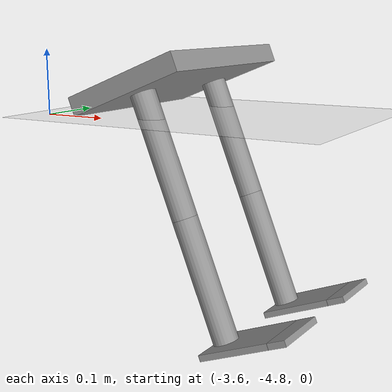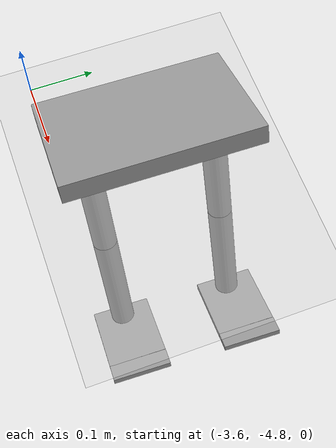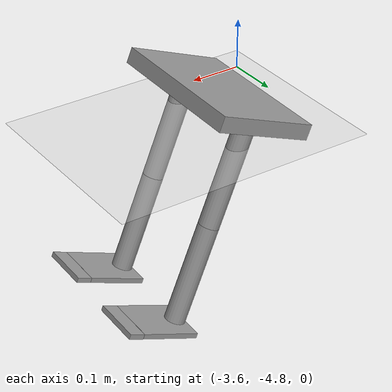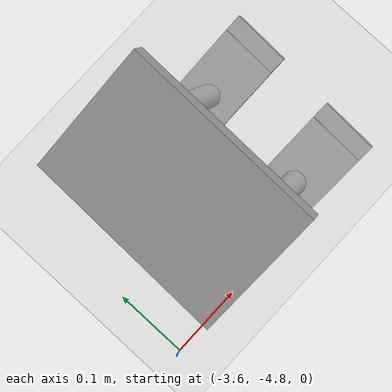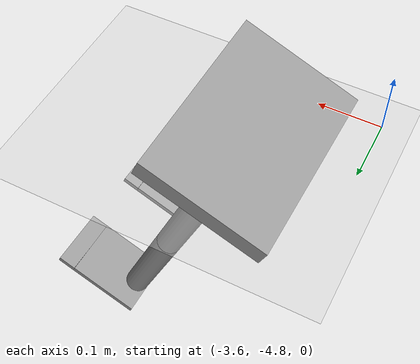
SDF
<sdf version="1.6">
 <world name="default">
  <model name="ground_plane">
   <static>1</static>
   <link name="link">
    <collision name="collision">
     <geometry><plane><normal>0 0 1</normal><size>100 100</size></plane></geometry>
     <surface><friction><ode><mu>100</mu><mu2>50</mu2></ode></friction></surface>
    </collision>
    <visual name="visual">
     <cast_shadows>0</cast_shadows>
     <geometry><plane><normal>0 0 1</normal><size>100 100</size></plane></geometry>
     <material>
      <script><uri>file://media/materials/scripts/gazebo.material</uri><name>Gazebo/Grey</name></script>
     </material>
    </visual>
   </link>
  </model>
  <model name="humanoid_0">
   <link name="link_0">
    <inertial>
     <mass>1</mass>
     <inertia>
      <ixx>0.166667</ixx>
      <ixy>0</ixy>
      <ixz>0</ixz>
      <iyy>0.166667</iyy>
      <iyz>0</iyz>
      <izz>0.166667</izz>
     </inertia>
    </inertial>
    <pose>0.02879 -0.034222 0.3501 0 -0 0</pose>
    <visual name="visual">
     <geometry><box><size>0.2 0.3 0.03</size></box></geometry>
     <material>
      <lighting>1</lighting>
      <script><uri>file://media/materials/scripts/gazebo.material</uri><name>Gazebo/Grey</name></script>
      <shader type="pixel"><normal_map>__default__</normal_map></shader>
      <ambient>0.3 0.3 0.3 1</ambient>
      <diffuse>0.7 0.7 0.7 1</diffuse>
      <specular>0.01 0.01 0.01 1</specular>
      <emissive>0 0 0 1</emissive>
     </material>
    </visual>
    <collision name="collision">
     <geometry><box><size>0.2 0.3 0.03</size></box></geometry>
     <surface>
      <friction>
       <ode><mu>1</mu><mu2>1</mu2><fdir1>0 0 0</fdir1><slip1>0</slip1><slip2>0</slip2></ode>
       <torsional>
        <coefficient>1</coefficient>
        <patch_radius>0</patch_radius>
        <surface_radius>0</surface_radius>
        <use_patch_radius>1</use_patch_radius>
        <ode><slip>0</slip></ode>
       </torsional>
      </friction>
      <bounce><restitution_coefficient>0</restitution_coefficient><threshold>1e+06</threshold></bounce>
      <contact>
       <collide_without_contact>0</collide_without_contact>
       <collide_without_contact_bitmask>1</collide_without_contact_bitmask>
       <collide_bitmask>1</collide_bitmask>
       <ode>
        <soft_cfm>0</soft_cfm>
        <soft_erp>0.2</soft_erp>
        <kp>1e+13</kp>
        <kd>1</kd>
        <max_vel>0.01</max_vel>
        <min_depth>0</min_depth>
       </ode>
       <bullet>
        <split_impulse>1</split_impulse>
        <split_impulse_penetration_threshold>-0.01</split_impulse_penetration_threshold>
        <soft_cfm>0</soft_cfm>
        <soft_erp>0.2</soft_erp>
        <kp>1e+13</kp>
        <kd>1</kd>
       </bullet>
      </contact>
     </surface>
    </collision>
   </link>
   <model name="full-leg">
    <link name="link_0">
     <inertial>
      <mass>0.0847963</mass>
      <inertia>
       <ixx>0.00010908</ixx>
       <ixy>0</ixy>
       <ixz>0</ixz>
       <iyy>7.137e-05</iyy>
       <iyz>0</iyz>
       <izz>0.00017903</izz>
      </inertia>
     </inertial>
     <pose>0.065943 0.108898 0.091666 0 -0 0</pose>
     <visual name="visual">
      <geometry><box><size>0.1 0.12 0.01</size></box></geometry>
      <material>
       <lighting>1</lighting>
       <script><uri>file://media/materials/scripts/gazebo.material</uri><name>Gazebo/Grey</name></script>
       <shader type="pixel"><normal_map>__default__</normal_map></shader>
       <ambient>0.3 0.3 0.3 1</ambient>
       <diffuse>0.7 0.7 0.7 1</diffuse>
       <specular>0.01 0.01 0.01 1</specular>
       <emissive>0 0 0 1</emissive>
      </material>
     </visual>
     <collision name="collision">
      <geometry><box><size>0.1 0.12 0.01</size></box></geometry>
      <surface>
       <friction>
        <ode><mu>1</mu><mu2>1</mu2><fdir1>0 0 0</fdir1><slip1>0</slip1><slip2>0</slip2></ode>
        <torsional>
         <coefficient>1</coefficient>
         <patch_radius>0</patch_radius>
         <surface_radius>0</surface_radius>
         <use_patch_radius>1</use_patch_radius>
         <ode><slip>0</slip></ode>
        </torsional>
       </friction>
       <bounce><restitution_coefficient>0</restitution_coefficient><threshold>1e+06</threshold></bounce>
       <contact>
        <collide_without_contact>0</collide_without_contact>
        <collide_without_contact_bitmask>1</collide_without_contact_bitmask>
        <collide_bitmask>1</collide_bitmask>
        <ode>
         <soft_cfm>0</soft_cfm>
         <soft_erp>0.2</soft_erp>
         <kp>1e+13</kp>
         <kd>1</kd>
         <max_vel>0.01</max_vel>
         <min_depth>0</min_depth>
        </ode>
        <bullet>
         <split_impulse>1</split_impulse>
         <split_impulse_penetration_threshold>-0.01</split_impulse_penetration_threshold>
         <soft_cfm>0</soft_cfm>
         <soft_erp>0.2</soft_erp>
         <kp>1e+13</kp>
         <kd>1</kd>
        </bullet>
       </contact>
      </surface>
     </collision>
    </link>
    <link name="link_0_clone">
     <inertial>
      <mass>0.0847963</mass>
      <inertia>
       <ixx>0.00010908</ixx>
       <ixy>0</ixy>
       <ixz>0</ixz>
       <iyy>7.137e-05</iyy>
       <iyz>0</iyz>
       <izz>0.00017903</izz>
      </inertia>
     </inertial>
     <pose>0.065943 0.183898 0.091666 0 0 -0.01</pose>
     <visual name="visual">
      <geometry><box><size>0.1 0.03 0.01</size></box></geometry>
      <material>
       <lighting>1</lighting>
       <script><uri>file://media/materials/scripts/gazebo.material</uri><name>Gazebo/Grey</name></script>
       <shader type="pixel"><normal_map>__default__</normal_map></shader>
       <ambient>0.3 0.3 0.3 1</ambient>
       <diffuse>0.7 0.7 0.7 1</diffuse>
       <specular>0.01 0.01 0.01 1</specular>
       <emissive>0 0 0 1</emissive>
      </material>
     </visual>
     <collision name="collision">
      <geometry><box><size>0.1 0.03 0.01</size></box></geometry>
      <surface>
       <friction>
        <ode><mu>1</mu><mu2>1</mu2><fdir1>0 0 0</fdir1><slip1>0</slip1><slip2>0</slip2></ode>
        <torsional>
         <coefficient>1</coefficient>
         <patch_radius>0</patch_radius>
         <surface_radius>0</surface_radius>
         <use_patch_radius>1</use_patch_radius>
         <ode><slip>0</slip></ode>
        </torsional>
       </friction>
       <bounce><restitution_coefficient>0</restitution_coefficient><threshold>1e+06</threshold></bounce>
       <contact>
        <collide_without_contact>0</collide_without_contact>
        <collide_without_contact_bitmask>1</collide_without_contact_bitmask>
        <collide_bitmask>1</collide_bitmask>
        <ode>
         <soft_cfm>0</soft_cfm>
         <soft_erp>0.2</soft_erp>
         <kp>1e+13</kp>
         <kd>1</kd>
         <max_vel>0.01</max_vel>
         <min_depth>0</min_depth>
        </ode>
        <bullet>
         <split_impulse>1</split_impulse>
         <split_impulse_penetration_threshold>-0.01</split_impulse_penetration_threshold>
         <soft_cfm>0</soft_cfm>
         <soft_erp>0.2</soft_erp>
         <kp>1e+13</kp>
         <kd>1</kd>
        </bullet>
       </contact>
      </surface>
     </collision>
    </link>
    <link name="link_1">
     <inertial>
      <mass>1</mass>
      <inertia><ixx>0.145833</ixx><ixy>0</ixy><ixz>0</ixz><iyy>0.145833</iyy><iyz>0</iyz><izz>0.125</izz></inertia>
     </inertial>
     <pose>0.065943 0.068898 0.191666 0 -0 0</pose>
     <visual name="visual">
      <geometry><cylinder><radius>0.02</radius><length>0.2</length></cylinder></geometry>
      <material>
       <lighting>1</lighting>
       <script><uri>file://media/materials/scripts/gazebo.material</uri><name>Gazebo/Grey</name></script>
       <shader type="pixel"><normal_map>__default__</normal_map></shader>
       <ambient>0.3 0.3 0.3 1</ambient>
       <diffuse>0.7 0.7 0.7 1</diffuse>
       <specular>0.01 0.01 0.01 1</specular>
       <emissive>0 0 0 1</emissive>
      </material>
     </visual>
     <collision name="collision">
      <geometry><cylinder><radius>0.02</radius><length>0.2</length></cylinder></geometry>
      <surface>
       <friction>
        <ode><mu>1</mu><mu2>1</mu2><fdir1>0 0 0</fdir1><slip1>0</slip1><slip2>0</slip2></ode>
        <torsional>
         <coefficient>1</coefficient>
         <patch_radius>0</patch_radius>
         <surface_radius>0</surface_radius>
         <use_patch_radius>1</use_patch_radius>
         <ode><slip>0</slip></ode>
        </torsional>
       </friction>
       <bounce><restitution_coefficient>0</restitution_coefficient><threshold>1e+06</threshold></bounce>
       <contact>
        <collide_without_contact>0</collide_without_contact>
        <collide_without_contact_bitmask>1</collide_without_contact_bitmask>
        <collide_bitmask>1</collide_bitmask>
        <ode>
         <soft_cfm>0</soft_cfm>
         <soft_erp>0.2</soft_erp>
         <kp>1e+13</kp>
         <kd>1</kd>
         <max_vel>0.01</max_vel>
         <min_depth>0</min_depth>
        </ode>
        <bullet>
         <split_impulse>1</split_impulse>
         <split_impulse_penetration_threshold>-0.01</split_impulse_penetration_threshold>
         <soft_cfm>0</soft_cfm>
         <soft_erp>0.2</soft_erp>
         <kp>1e+13</kp>
         <kd>1</kd>
        </bullet>
       </contact>
      </surface>
     </collision>
    </link>
    <link name="link_1_clone">
     <inertial>
      <mass>1</mass>
      <inertia><ixx>0.145833</ixx><ixy>0</ixy><ixz>0</ixz><iyy>0.145833</iyy><iyz>0</iyz><izz>0.125</izz></inertia>
     </inertial>
     <pose>0.065943 0.068898 0.391666 0 -0 0</pose>
     <visual name="visual">
      <geometry><cylinder><radius>0.02</radius><length>0.2</length></cylinder></geometry>
      <material>
       <lighting>1</lighting>
       <script><uri>file://media/materials/scripts/gazebo.material</uri><name>Gazebo/Grey</name></script>
       <shader type="pixel"><normal_map>__default__</normal_map></shader>
       <ambient>0.3 0.3 0.3 1</ambient>
       <diffuse>0.7 0.7 0.7 1</diffuse>
       <specular>0.01 0.01 0.01 1</specular>
       <emissive>0 0 0 1</emissive>
      </material>
     </visual>
     <collision name="collision">
      <geometry><cylinder><radius>0.02</radius><length>0.2</length></cylinder></geometry>
      <surface>
       <friction>
        <ode><mu>1</mu><mu2>1</mu2><fdir1>0 0 0</fdir1><slip1>0</slip1><slip2>0</slip2></ode>
        <torsional>
         <coefficient>1</coefficient>
         <patch_radius>0</patch_radius>
         <surface_radius>0</surface_radius>
         <use_patch_radius>1</use_patch_radius>
         <ode><slip>0</slip></ode>
        </torsional>
       </friction>
       <bounce><restitution_coefficient>0</restitution_coefficient><threshold>1e+06</threshold></bounce>
       <contact>
        <collide_without_contact>0</collide_without_contact>
        <collide_without_contact_bitmask>1</collide_without_contact_bitmask>
        <collide_bitmask>1</collide_bitmask>
        <ode>
         <soft_cfm>0</soft_cfm>
         <soft_erp>0.2</soft_erp>
         <kp>1e+13</kp>
         <kd>1</kd>
         <max_vel>0.01</max_vel>
         <min_depth>0</min_depth>
        </ode>
        <bullet>
         <split_impulse>1</split_impulse>
         <split_impulse_penetration_threshold>-0.01</split_impulse_penetration_threshold>
         <soft_cfm>0</soft_cfm>
         <soft_erp>0.2</soft_erp>
         <kp>1e+13</kp>
         <kd>1</kd>
        </bullet>
       </contact>
      </surface>
     </collision>
    </link>
    <joint name="link_0_JOINT_0" type="revolute">
     <parent>link_0</parent>
     <child>link_0_clone</child>
     <pose>0 -0.015 0 0 -0 0</pose>
     <axis>
      <xyz>1 0 0</xyz>
      <limit>
       <lower>-1.79769e+308</lower>
       <upper>1.79769e+308</upper>
       <effort>-1</effort>
       <velocity>-1</velocity>
      </limit>
      <dynamics>
       <spring_reference>0</spring_reference>
       <spring_stiffness>0</spring_stiffness>
       <damping>0</damping>
      </dynamics>
      <use_parent_model_frame>0</use_parent_model_frame>
     </axis>
     <physics>
      <ode><limit><cfm>0</cfm><erp>0.2</erp></limit><suspension><cfm>0</cfm><erp>0.2</erp></suspension></ode>
     </physics>
    </joint>
    <joint name="link_0_JOINT_2" type="revolute">
     <parent>link_0</parent>
     <child>link_1</child>
     <pose>0 0 -0.1 0 -0 0</pose>
     <axis>
      <xyz>1 0 0</xyz>
      <limit>
       <lower>-1.79769e+308</lower>
       <upper>1.79769e+308</upper>
       <effort>-1</effort>
       <velocity>-1</velocity>
      </limit>
      <dynamics>
       <spring_reference>0</spring_reference>
       <spring_stiffness>0</spring_stiffness>
       <damping>0</damping>
      </dynamics>
      <use_parent_model_frame>0</use_parent_model_frame>
     </axis>
     <physics>
      <ode><limit><cfm>0</cfm><erp>0.2</erp></limit><suspension><cfm>0</cfm><erp>0.2</erp></suspension></ode>
     </physics>
    </joint>
    <joint name="link_1_JOINT_3" type="revolute">
     <parent>link_1</parent>
     <child>link_1_clone</child>
     <pose>0 0 -0.1 0 -0 0</pose>
     <axis>
      <xyz>1 0 0</xyz>
      <limit>
       <lower>-1.79769e+308</lower>
       <upper>1.79769e+308</upper>
       <effort>-1</effort>
       <velocity>-1</velocity>
      </limit>
      <dynamics>
       <spring_reference>0</spring_reference>
       <spring_stiffness>0</spring_stiffness>
       <damping>0</damping>
      </dynamics>
      <use_parent_model_frame>0</use_parent_model_frame>
     </axis>
     <physics>
      <ode><limit><cfm>0</cfm><erp>0.2</erp></limit><suspension><cfm>0</cfm><erp>0.2</erp></suspension></ode>
     </physics>
    </joint>
    <static>0</static>
    <pose>-0.042531 -0.066167 -0.154901 0 0 -1.57989</pose>
   </model>
   <model name="full-leg_clone">
    <link name="link_0">
     <inertial>
      <mass>0.0847963</mass>
      <inertia>
       <ixx>0.00010908</ixx>
       <ixy>0</ixy>
       <ixz>0</ixz>
       <iyy>7.137e-05</iyy>
       <iyz>0</iyz>
       <izz>0.00017903</izz>
      </inertia>
     </inertial>
     <pose>0.065943 0.108898 0.091666 0 -0 0</pose>
     <visual name="visual">
      <geometry><box><size>0.1 0.12 0.01</size></box></geometry>
      <material>
       <lighting>1</lighting>
       <script><uri>file://media/materials/scripts/gazebo.material</uri><name>Gazebo/Grey</name></script>
       <shader type="pixel"><normal_map>__default__</normal_map></shader>
       <ambient>0.3 0.3 0.3 1</ambient>
       <diffuse>0.7 0.7 0.7 1</diffuse>
       <specular>0.01 0.01 0.01 1</specular>
       <emissive>0 0 0 1</emissive>
      </material>
     </visual>
     <collision name="collision">
      <geometry><box><size>0.1 0.12 0.01</size></box></geometry>
      <surface>
       <friction>
        <ode><mu>1</mu><mu2>1</mu2><fdir1>0 0 0</fdir1><slip1>0</slip1><slip2>0</slip2></ode>
        <torsional>
         <coefficient>1</coefficient>
         <patch_radius>0</patch_radius>
         <surface_radius>0</surface_radius>
         <use_patch_radius>1</use_patch_radius>
         <ode><slip>0</slip></ode>
        </torsional>
       </friction>
       <bounce><restitution_coefficient>0</restitution_coefficient><threshold>1e+06</threshold></bounce>
       <contact>
        <collide_without_contact>0</collide_without_contact>
        <collide_without_contact_bitmask>1</collide_without_contact_bitmask>
        <collide_bitmask>1</collide_bitmask>
        <ode>
         <soft_cfm>0</soft_cfm>
         <soft_erp>0.2</soft_erp>
         <kp>1e+13</kp>
         <kd>1</kd>
         <max_vel>0.01</max_vel>
         <min_depth>0</min_depth>
        </ode>
        <bullet>
         <split_impulse>1</split_impulse>
         <split_impulse_penetration_threshold>-0.01</split_impulse_penetration_threshold>
         <soft_cfm>0</soft_cfm>
         <soft_erp>0.2</soft_erp>
         <kp>1e+13</kp>
         <kd>1</kd>
        </bullet>
       </contact>
      </surface>
     </collision>
    </link>
    <link name="link_0_clone">
     <inertial>
      <mass>0.0847963</mass>
      <inertia>
       <ixx>0.00010908</ixx>
       <ixy>0</ixy>
       <ixz>0</ixz>
       <iyy>7.137e-05</iyy>
       <iyz>0</iyz>
       <izz>0.00017903</izz>
      </inertia>
     </inertial>
     <pose>0.065943 0.183898 0.091666 0 0 -0.01</pose>
     <visual name="visual">
      <geometry><box><size>0.1 0.03 0.01</size></box></geometry>
      <material>
       <lighting>1</lighting>
       <script><uri>file://media/materials/scripts/gazebo.material</uri><name>Gazebo/Grey</name></script>
       <shader type="pixel"><normal_map>__default__</normal_map></shader>
       <ambient>0.3 0.3 0.3 1</ambient>
       <diffuse>0.7 0.7 0.7 1</diffuse>
       <specular>0.01 0.01 0.01 1</specular>
       <emissive>0 0 0 1</emissive>
      </material>
     </visual>
     <collision name="collision">
      <geometry><box><size>0.1 0.03 0.01</size></box></geometry>
      <surface>
       <friction>
        <ode><mu>1</mu><mu2>1</mu2><fdir1>0 0 0</fdir1><slip1>0</slip1><slip2>0</slip2></ode>
        <torsional>
         <coefficient>1</coefficient>
         <patch_radius>0</patch_radius>
         <surface_radius>0</surface_radius>
         <use_patch_radius>1</use_patch_radius>
         <ode><slip>0</slip></ode>
        </torsional>
       </friction>
       <bounce><restitution_coefficient>0</restitution_coefficient><threshold>1e+06</threshold></bounce>
       <contact>
        <collide_without_contact>0</collide_without_contact>
        <collide_without_contact_bitmask>1</collide_without_contact_bitmask>
        <collide_bitmask>1</collide_bitmask>
        <ode>
         <soft_cfm>0</soft_cfm>
         <soft_erp>0.2</soft_erp>
         <kp>1e+13</kp>
         <kd>1</kd>
         <max_vel>0.01</max_vel>
         <min_depth>0</min_depth>
        </ode>
        <bullet>
         <split_impulse>1</split_impulse>
         <split_impulse_penetration_threshold>-0.01</split_impulse_penetration_threshold>
         <soft_cfm>0</soft_cfm>
         <soft_erp>0.2</soft_erp>
         <kp>1e+13</kp>
         <kd>1</kd>
        </bullet>
       </contact>
      </surface>
     </collision>
    </link>
    <link name="link_1">
     <inertial>
      <mass>1</mass>
      <inertia><ixx>0.145833</ixx><ixy>0</ixy><ixz>0</ixz><iyy>0.145833</iyy><iyz>0</iyz><izz>0.125</izz></inertia>
     </inertial>
     <pose>0.065943 0.068898 0.191666 0 -0 0</pose>
     <visual name="visual">
      <geometry><cylinder><radius>0.02</radius><length>0.2</length></cylinder></geometry>
      <material>
       <lighting>1</lighting>
       <script><uri>file://media/materials/scripts/gazebo.material</uri><name>Gazebo/Grey</name></script>
       <shader type="pixel"><normal_map>__default__</normal_map></shader>
       <ambient>0.3 0.3 0.3 1</ambient>
       <diffuse>0.7 0.7 0.7 1</diffuse>
       <specular>0.01 0.01 0.01 1</specular>
       <emissive>0 0 0 1</emissive>
      </material>
     </visual>
     <collision name="collision">
      <geometry><cylinder><radius>0.02</radius><length>0.2</length></cylinder></geometry>
      <surface>
       <friction>
        <ode><mu>1</mu><mu2>1</mu2><fdir1>0 0 0</fdir1><slip1>0</slip1><slip2>0</slip2></ode>
        <torsional>
         <coefficient>1</coefficient>
         <patch_radius>0</patch_radius>
         <surface_radius>0</surface_radius>
         <use_patch_radius>1</use_patch_radius>
         <ode><slip>0</slip></ode>
        </torsional>
       </friction>
       <bounce><restitution_coefficient>0</restitution_coefficient><threshold>1e+06</threshold></bounce>
       <contact>
        <collide_without_contact>0</collide_without_contact>
        <collide_without_contact_bitmask>1</collide_without_contact_bitmask>
        <collide_bitmask>1</collide_bitmask>
        <ode>
         <soft_cfm>0</soft_cfm>
         <soft_erp>0.2</soft_erp>
         <kp>1e+13</kp>
         <kd>1</kd>
         <max_vel>0.01</max_vel>
         <min_depth>0</min_depth>
        </ode>
        <bullet>
         <split_impulse>1</split_impulse>
         <split_impulse_penetration_threshold>-0.01</split_impulse_penetration_threshold>
         <soft_cfm>0</soft_cfm>
         <soft_erp>0.2</soft_erp>
         <kp>1e+13</kp>
         <kd>1</kd>
        </bullet>
       </contact>
      </surface>
     </collision>
    </link>
    <link name="link_1_clone">
     <inertial>
      <mass>1</mass>
      <inertia><ixx>0.145833</ixx><ixy>0</ixy><ixz>0</ixz><iyy>0.145833</iyy><iyz>0</iyz><izz>0.125</izz></inertia>
     </inertial>
     <pose>0.065943 0.068898 0.391666 0 -0 0</pose>
     <visual name="visual">
      <geometry><cylinder><radius>0.02</radius><length>0.2</length></cylinder></geometry>
      <material>
       <lighting>1</lighting>
       <script><uri>file://media/materials/scripts/gazebo.material</uri><name>Gazebo/Grey</name></script>
       <shader type="pixel"><normal_map>__default__</normal_map></shader>
       <ambient>0.3 0.3 0.3 1</ambient>
       <diffuse>0.7 0.7 0.7 1</diffuse>
       <specular>0.01 0.01 0.01 1</specular>
       <emissive>0 0 0 1</emissive>
      </material>
     </visual>
     <collision name="collision">
      <geometry><cylinder><radius>0.02</radius><length>0.2</length></cylinder></geometry>
      <surface>
       <friction>
        <ode><mu>1</mu><mu2>1</mu2><fdir1>0 0 0</fdir1><slip1>0</slip1><slip2>0</slip2></ode>
        <torsional>
         <coefficient>1</coefficient>
         <patch_radius>0</patch_radius>
         <surface_radius>0</surface_radius>
         <use_patch_radius>1</use_patch_radius>
         <ode><slip>0</slip></ode>
        </torsional>
       </friction>
       <bounce><restitution_coefficient>0</restitution_coefficient><threshold>1e+06</threshold></bounce>
       <contact>
        <collide_without_contact>0</collide_without_contact>
        <collide_without_contact_bitmask>1</collide_without_contact_bitmask>
        <collide_bitmask>1</collide_bitmask>
        <ode>
         <soft_cfm>0</soft_cfm>
         <soft_erp>0.2</soft_erp>
         <kp>1e+13</kp>
         <kd>1</kd>
         <max_vel>0.01</max_vel>
         <min_depth>0</min_depth>
        </ode>
        <bullet>
         <split_impulse>1</split_impulse>
         <split_impulse_penetration_threshold>-0.01</split_impulse_penetration_threshold>
         <soft_cfm>0</soft_cfm>
         <soft_erp>0.2</soft_erp>
         <kp>1e+13</kp>
         <kd>1</kd>
        </bullet>
       </contact>
      </surface>
     </collision>
    </link>
    <joint name="link_0_JOINT_0" type="revolute">
     <parent>link_0</parent>
     <child>link_0_clone</child>
     <pose>0 -0.015 0 0 -0 0</pose>
     <axis>
      <xyz>1 0 0</xyz>
      <limit>
       <lower>-1.79769e+308</lower>
       <upper>1.79769e+308</upper>
       <effort>-1</effort>
       <velocity>-1</velocity>
      </limit>
      <dynamics>
       <spring_reference>0</spring_reference>
       <spring_stiffness>0</spring_stiffness>
       <damping>0</damping>
      </dynamics>
      <use_parent_model_frame>0</use_parent_model_frame>
     </axis>
     <physics>
      <ode><limit><cfm>0</cfm><erp>0.2</erp></limit><suspension><cfm>0</cfm><erp>0.2</erp></suspension></ode>
     </physics>
    </joint>
    <joint name="link_0_JOINT_2" type="revolute">
     <parent>link_0</parent>
     <child>link_1</child>
     <pose>0 0 -0.1 0 -0 0</pose>
     <axis>
      <xyz>1 0 0</xyz>
      <limit>
       <lower>-1.79769e+308</lower>
       <upper>1.79769e+308</upper>
       <effort>-1</effort>
       <velocity>-1</velocity>
      </limit>
      <dynamics>
       <spring_reference>0</spring_reference>
       <spring_stiffness>0</spring_stiffness>
       <damping>0</damping>
      </dynamics>
      <use_parent_model_frame>0</use_parent_model_frame>
     </axis>
     <physics>
      <ode><limit><cfm>0</cfm><erp>0.2</erp></limit><suspension><cfm>0</cfm><erp>0.2</erp></suspension></ode>
     </physics>
    </joint>
    <joint name="link_1_JOINT_3" type="revolute">
     <parent>link_1</parent>
     <child>link_1_clone</child>
     <pose>0 0 -0.1 0 -0 0</pose>
     <axis>
      <xyz>1 0 0</xyz>
      <limit>
       <lower>-1.79769e+308</lower>
       <upper>1.79769e+308</upper>
       <effort>-1</effort>
       <velocity>-1</velocity>
      </limit>
      <dynamics>
       <spring_reference>0</spring_reference>
       <spring_stiffness>0</spring_stiffness>
       <damping>0</damping>
      </dynamics>
      <use_parent_model_frame>0</use_parent_model_frame>
     </axis>
     <physics>
      <ode><limit><cfm>0</cfm><erp>0.2</erp></limit><suspension><cfm>0</cfm><erp>0.2</erp></suspension></ode>
     </physics>
    </joint>
    <static>0</static>
    <pose>-0.036586 0.130944 -0.15615 0 0 -1.57989</pose>
   </model>
   <joint name="link_1_clone_JOINT_0" type="revolute">
    <parent>full-leg::link_1_clone</parent>
    <child>link_0</child>
    <pose>0 -0.1 0 0 -0 0</pose>
    <axis>
     <xyz>0 1 0</xyz>
     <limit>
      <lower>-1.79769e+308</lower>
      <upper>1.79769e+308</upper>
      <effort>-1</effort>
      <velocity>-1</velocity>
     </limit>
     <dynamics>
      <spring_reference>0</spring_reference>
      <spring_stiffness>0</spring_stiffness>
      <damping>0</damping>
      <friction>0</friction>
     </dynamics>
     <use_parent_model_frame>0</use_parent_model_frame>
    </axis>
    <physics>
     <ode><limit><cfm>0</cfm><erp>0.2</erp></limit><suspension><cfm>0</cfm><erp>0.2</erp></suspension></ode>
    </physics>
   </joint>
   <joint name="link_1_clone_JOINT_1" type="revolute">
    <parent>full-leg_clone::link_1_clone</parent>
    <child>link_0</child>
    <pose>0 0.1 0 0 -0 0</pose>
    <axis>
     <xyz>0 1 0</xyz>
     <limit>
      <lower>-1.79769e+308</lower>
      <upper>1.79769e+308</upper>
      <effort>-1</effort>
      <velocity>-1</velocity>
     </limit>
     <dynamics>
      <spring_reference>0</spring_reference>
      <spring_stiffness>0</spring_stiffness>
      <damping>0</damping>
     </dynamics>
     <use_parent_model_frame>0</use_parent_model_frame>
    </axis>
    <physics>
     <ode><limit><cfm>0</cfm><erp>0.2</erp></limit><suspension><cfm>0</cfm><erp>0.2</erp></suspension></ode>
    </physics>
   </joint>
   <static>0</static>
   <pose>-3.35034 -4.62887 -0.284409 -0.002951 -0.379909 -0.020418</pose>
  </model>
 </world>
</sdf>
